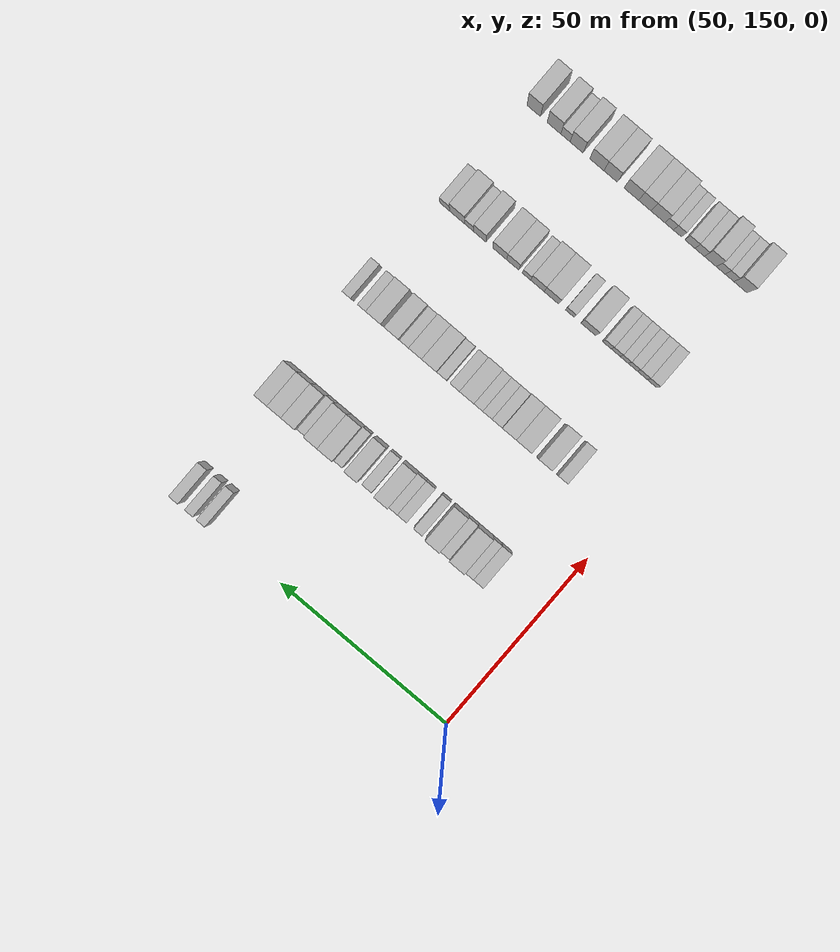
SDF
<sdf version="1.6">
 <world name="default">
  <model name="building_404">
   <static>1</static>
   <pose>55.0000 221.9756 0 0.000000 0.000000 0.000000</pose>
   <link name="link">
    <pose>0 0 3.00 0 0 0</pose>
    <collision name="collision"><geometry><box><size>10.0000 2.5108 6.0000</size></box></geometry></collision>
    <visual name="visual">
     <cast_shadows>0</cast_shadows>
     <geometry><box><size>10.0000 2.5108 6.0000</size></box></geometry>
     <material>
      <script>
       <uri>model://HANNAS_wall/materials/scripts</uri>
       <uri>model://HANNAS_wall/materials/textures</uri>
       <name>vrc/HANNAS_wall</name>
      </script>
     </material>
    </visual>
   </link>
  </model>
  <model name="building_405">
   <static>1</static>
   <pose>55.0000 225.4416 0 0.000000 0.000000 0.000000</pose>
   <link name="link">
    <pose>0 0 3.00 0 0 0</pose>
    <collision name="collision"><geometry><box><size>10.0000 2.4212 6.0000</size></box></geometry></collision>
    <visual name="visual">
     <cast_shadows>0</cast_shadows>
     <geometry><box><size>10.0000 2.4212 6.0000</size></box></geometry>
     <material>
      <script>
       <uri>model://HANNAS_wall/materials/scripts</uri>
       <uri>model://HANNAS_wall/materials/textures</uri>
       <name>vrc/HANNAS_wall</name>
      </script>
     </material>
    </visual>
   </link>
  </model>
  <model name="building_406">
   <static>1</static>
   <pose>55.0000 229.9931 0 0.000000 0.000000 0.000000</pose>
   <link name="link">
    <pose>0 0 3.00 0 0 0</pose>
    <collision name="collision"><geometry><box><size>10.0000 2.6818 6.0000</size></box></geometry></collision>
    <visual name="visual">
     <cast_shadows>0</cast_shadows>
     <geometry><box><size>10.0000 2.6818 6.0000</size></box></geometry>
     <material>
      <script>
       <uri>model://HANNAS_wall/materials/scripts</uri>
       <uri>model://HANNAS_wall/materials/textures</uri>
       <name>vrc/HANNAS_wall</name>
      </script>
     </material>
    </visual>
   </link>
  </model>
  <model name="building_603">
   <static>1</static>
   <pose>85.0000 165.8715 0 0.000000 0.000000 0.000000</pose>
   <link name="link">
    <pose>0 0 3.00 0 0 0</pose>
    <collision name="collision"><geometry><box><size>10.0000 2.9483 6.0000</size></box></geometry></collision>
    <visual name="visual">
     <cast_shadows>0</cast_shadows>
     <geometry><box><size>10.0000 2.9483 6.0000</size></box></geometry>
     <material>
      <script>
       <uri>model://HANNAS_wall/materials/scripts</uri>
       <uri>model://HANNAS_wall/materials/textures</uri>
       <name>vrc/HANNAS_wall</name>
      </script>
     </material>
    </visual>
   </link>
  </model>
  <model name="building_604">
   <static>1</static>
   <pose>85.0000 168.6481 0 0.000000 0.000000 0.000000</pose>
   <link name="link">
    <pose>0 0 3.00 0 0 0</pose>
    <collision name="collision"><geometry><box><size>10.0000 2.6049 6.0000</size></box></geometry></collision>
    <visual name="visual">
     <cast_shadows>0</cast_shadows>
     <geometry><box><size>10.0000 2.6049 6.0000</size></box></geometry>
     <material>
      <script>
       <uri>model://HANNAS_wall/materials/scripts</uri>
       <uri>model://HANNAS_wall/materials/textures</uri>
       <name>vrc/HANNAS_wall</name>
      </script>
     </material>
    </visual>
   </link>
  </model>
  <model name="building_605">
   <static>1</static>
   <pose>85.0000 172.1500 0 0.000000 0.000000 0.000000</pose>
   <link name="link">
    <pose>0 0 4.50 0 0 0</pose>
    <collision name="collision"><geometry><box><size>10.0000 4.3989 9.0000</size></box></geometry></collision>
    <visual name="visual">
     <cast_shadows>0</cast_shadows>
     <geometry><box><size>10.0000 4.3989 9.0000</size></box></geometry>
     <material>
      <script>
       <uri>model://HANNAS_wall/materials/scripts</uri>
       <uri>model://HANNAS_wall/materials/textures</uri>
       <name>vrc/HANNAS_wall</name>
      </script>
     </material>
    </visual>
   </link>
  </model>
  <model name="building_606">
   <static>1</static>
   <pose>85.0000 175.7868 0 0.000000 0.000000 0.000000</pose>
   <link name="link">
    <pose>0 0 3.00 0 0 0</pose>
    <collision name="collision"><geometry><box><size>10.0000 2.8748 6.0000</size></box></geometry></collision>
    <visual name="visual">
     <cast_shadows>0</cast_shadows>
     <geometry><box><size>10.0000 2.8748 6.0000</size></box></geometry>
     <material>
      <script>
       <uri>model://HANNAS_wall/materials/scripts</uri>
       <uri>model://HANNAS_wall/materials/textures</uri>
       <name>vrc/HANNAS_wall</name>
      </script>
     </material>
    </visual>
   </link>
  </model>
  <model name="building_607">
   <static>1</static>
   <pose>85.0000 179.3170 0 0.000000 0.000000 0.000000</pose>
   <link name="link">
    <pose>0 0 4.50 0 0 0</pose>
    <collision name="collision"><geometry><box><size>10.0000 4.1857 9.0000</size></box></geometry></collision>
    <visual name="visual">
     <cast_shadows>0</cast_shadows>
     <geometry><box><size>10.0000 4.1857 9.0000</size></box></geometry>
     <material>
      <script>
       <uri>model://HANNAS_wall/materials/scripts</uri>
       <uri>model://HANNAS_wall/materials/textures</uri>
       <name>vrc/HANNAS_wall</name>
      </script>
     </material>
    </visual>
   </link>
  </model>
  <model name="building_608">
   <static>1</static>
   <pose>85.0000 183.6979 0 0.000000 0.000000 0.000000</pose>
   <link name="link">
    <pose>0 0 3.00 0 0 0</pose>
    <collision name="collision"><geometry><box><size>10.0000 2.5763 6.0000</size></box></geometry></collision>
    <visual name="visual">
     <cast_shadows>0</cast_shadows>
     <geometry><box><size>10.0000 2.5763 6.0000</size></box></geometry>
     <material>
      <script>
       <uri>model://HANNAS_wall/materials/scripts</uri>
       <uri>model://HANNAS_wall/materials/textures</uri>
       <name>vrc/HANNAS_wall</name>
      </script>
     </material>
    </visual>
   </link>
  </model>
  <model name="building_609">
   <static>1</static>
   <pose>85.0000 188.3518 0 0.000000 0.000000 0.000000</pose>
   <link name="link">
    <pose>0 0 3.00 0 0 0</pose>
    <collision name="collision"><geometry><box><size>10.0000 2.7315 6.0000</size></box></geometry></collision>
    <visual name="visual">
     <cast_shadows>0</cast_shadows>
     <geometry><box><size>10.0000 2.7315 6.0000</size></box></geometry>
     <material>
      <script>
       <uri>model://HANNAS_wall/materials/scripts</uri>
       <uri>model://HANNAS_wall/materials/textures</uri>
       <name>vrc/HANNAS_wall</name>
      </script>
     </material>
    </visual>
   </link>
  </model>
  <model name="building_610">
   <static>1</static>
   <pose>85.0000 190.9875 0 0.000000 0.000000 0.000000</pose>
   <link name="link">
    <pose>0 0 3.00 0 0 0</pose>
    <collision name="collision"><geometry><box><size>10.0000 2.5399 6.0000</size></box></geometry></collision>
    <visual name="visual">
     <cast_shadows>0</cast_shadows>
     <geometry><box><size>10.0000 2.5399 6.0000</size></box></geometry>
     <material>
      <script>
       <uri>model://HANNAS_wall/materials/scripts</uri>
       <uri>model://HANNAS_wall/materials/textures</uri>
       <name>vrc/HANNAS_wall</name>
      </script>
     </material>
    </visual>
   </link>
  </model>
  <model name="building_611">
   <static>1</static>
   <pose>85.0000 194.2859 0 0.000000 0.000000 0.000000</pose>
   <link name="link">
    <pose>0 0 4.50 0 0 0</pose>
    <collision name="collision"><geometry><box><size>10.0000 4.0568 9.0000</size></box></geometry></collision>
    <visual name="visual">
     <cast_shadows>0</cast_shadows>
     <geometry><box><size>10.0000 4.0568 9.0000</size></box></geometry>
     <material>
      <script>
       <uri>model://HANNAS_wall/materials/scripts</uri>
       <uri>model://HANNAS_wall/materials/textures</uri>
       <name>vrc/HANNAS_wall</name>
      </script>
     </material>
    </visual>
   </link>
  </model>
  <model name="building_612">
   <static>1</static>
   <pose>85.0000 198.7643 0 0.000000 0.000000 0.000000</pose>
   <link name="link">
    <pose>0 0 3.00 0 0 0</pose>
    <collision name="collision"><geometry><box><size>10.0000 2.8999 6.0000</size></box></geometry></collision>
    <visual name="visual">
     <cast_shadows>0</cast_shadows>
     <geometry><box><size>10.0000 2.8999 6.0000</size></box></geometry>
     <material>
      <script>
       <uri>model://HANNAS_wall/materials/scripts</uri>
       <uri>model://HANNAS_wall/materials/textures</uri>
       <name>vrc/HANNAS_wall</name>
      </script>
     </material>
    </visual>
   </link>
  </model>
  <model name="building_613">
   <static>1</static>
   <pose>85.0000 203.0879 0 0.000000 0.000000 0.000000</pose>
   <link name="link">
    <pose>0 0 4.50 0 0 0</pose>
    <collision name="collision"><geometry><box><size>10.0000 3.7473 9.0000</size></box></geometry></collision>
    <visual name="visual">
     <cast_shadows>0</cast_shadows>
     <geometry><box><size>10.0000 3.7473 9.0000</size></box></geometry>
     <material>
      <script>
       <uri>model://HANNAS_wall/materials/scripts</uri>
       <uri>model://HANNAS_wall/materials/textures</uri>
       <name>vrc/HANNAS_wall</name>
      </script>
     </material>
    </visual>
   </link>
  </model>
  <model name="building_614">
   <static>1</static>
   <pose>85.0000 207.1631 0 0.000000 0.000000 0.000000</pose>
   <link name="link">
    <pose>0 0 3.00 0 0 0</pose>
    <collision name="collision"><geometry><box><size>10.0000 2.4032 6.0000</size></box></geometry></collision>
    <visual name="visual">
     <cast_shadows>0</cast_shadows>
     <geometry><box><size>10.0000 2.4032 6.0000</size></box></geometry>
     <material>
      <script>
       <uri>model://HANNAS_wall/materials/scripts</uri>
       <uri>model://HANNAS_wall/materials/textures</uri>
       <name>vrc/HANNAS_wall</name>
      </script>
     </material>
    </visual>
   </link>
  </model>
  <model name="building_615">
   <static>1</static>
   <pose>85.0000 210.5468 0 0.000000 0.000000 0.000000</pose>
   <link name="link">
    <pose>0 0 4.50 0 0 0</pose>
    <collision name="collision"><geometry><box><size>10.0000 4.3643 9.0000</size></box></geometry></collision>
    <visual name="visual">
     <cast_shadows>0</cast_shadows>
     <geometry><box><size>10.0000 4.3643 9.0000</size></box></geometry>
     <material>
      <script>
       <uri>model://HANNAS_wall/materials/scripts</uri>
       <uri>model://HANNAS_wall/materials/textures</uri>
       <name>vrc/HANNAS_wall</name>
      </script>
     </material>
    </visual>
   </link>
  </model>
  <model name="building_616">
   <static>1</static>
   <pose>85.0000 214.7239 0 0.000000 0.000000 0.000000</pose>
   <link name="link">
    <pose>0 0 4.50 0 0 0</pose>
    <collision name="collision"><geometry><box><size>10.0000 3.9899 9.0000</size></box></geometry></collision>
    <visual name="visual">
     <cast_shadows>0</cast_shadows>
     <geometry><box><size>10.0000 3.9899 9.0000</size></box></geometry>
     <material>
      <script>
       <uri>model://HANNAS_wall/materials/scripts</uri>
       <uri>model://HANNAS_wall/materials/textures</uri>
       <name>vrc/HANNAS_wall</name>
      </script>
     </material>
    </visual>
   </link>
  </model>
  <model name="building_617">
   <static>1</static>
   <pose>85.0000 217.9796 0 0.000000 0.000000 0.000000</pose>
   <link name="link">
    <pose>0 0 3.00 0 0 0</pose>
    <collision name="collision"><geometry><box><size>10.0000 2.5215 6.0000</size></box></geometry></collision>
    <visual name="visual">
     <cast_shadows>0</cast_shadows>
     <geometry><box><size>10.0000 2.5215 6.0000</size></box></geometry>
     <material>
      <script>
       <uri>model://HANNAS_wall/materials/scripts</uri>
       <uri>model://HANNAS_wall/materials/textures</uri>
       <name>vrc/HANNAS_wall</name>
      </script>
     </material>
    </visual>
   </link>
  </model>
  <model name="building_618">
   <static>1</static>
   <pose>85.0000 221.2233 0 0.000000 0.000000 0.000000</pose>
   <link name="link">
    <pose>0 0 4.50 0 0 0</pose>
    <collision name="collision"><geometry><box><size>10.0000 3.9660 9.0000</size></box></geometry></collision>
    <visual name="visual">
     <cast_shadows>0</cast_shadows>
     <geometry><box><size>10.0000 3.9660 9.0000</size></box></geometry>
     <material>
      <script>
       <uri>model://HANNAS_wall/materials/scripts</uri>
       <uri>model://HANNAS_wall/materials/textures</uri>
       <name>vrc/HANNAS_wall</name>
      </script>
     </material>
    </visual>
   </link>
  </model>
  <model name="building_619">
   <static>1</static>
   <pose>85.0000 225.2272 0 0.000000 0.000000 0.000000</pose>
   <link name="link">
    <pose>0 0 4.50 0 0 0</pose>
    <collision name="collision"><geometry><box><size>10.0000 4.0416 9.0000</size></box></geometry></collision>
    <visual name="visual">
     <cast_shadows>0</cast_shadows>
     <geometry><box><size>10.0000 4.0416 9.0000</size></box></geometry>
     <material>
      <script>
       <uri>model://HANNAS_wall/materials/scripts</uri>
       <uri>model://HANNAS_wall/materials/textures</uri>
       <name>vrc/HANNAS_wall</name>
      </script>
     </material>
    </visual>
   </link>
  </model>
  <model name="building_620">
   <static>1</static>
   <pose>85.0000 229.1442 0 0.000000 0.000000 0.000000</pose>
   <link name="link">
    <pose>0 0 4.50 0 0 0</pose>
    <collision name="collision"><geometry><box><size>10.0000 3.7926 9.0000</size></box></geometry></collision>
    <visual name="visual">
     <cast_shadows>0</cast_shadows>
     <geometry><box><size>10.0000 3.7926 9.0000</size></box></geometry>
     <material>
      <script>
       <uri>model://HANNAS_wall/materials/scripts</uri>
       <uri>model://HANNAS_wall/materials/textures</uri>
       <name>vrc/HANNAS_wall</name>
      </script>
     </material>
    </visual>
   </link>
  </model>
  <model name="building_832">
   <static>1</static>
   <pose>115.0000 166.5516 0 0.000000 0.000000 0.000000</pose>
   <link name="link">
    <pose>0 0 3.00 0 0 0</pose>
    <collision name="collision"><geometry><box><size>10.0000 2.8559 6.0000</size></box></geometry></collision>
    <visual name="visual">
     <cast_shadows>0</cast_shadows>
     <geometry><box><size>10.0000 2.8559 6.0000</size></box></geometry>
     <material>
      <script>
       <uri>model://HANNAS_wall/materials/scripts</uri>
       <uri>model://HANNAS_wall/materials/textures</uri>
       <name>vrc/HANNAS_wall</name>
      </script>
     </material>
    </visual>
   </link>
  </model>
  <model name="building_833">
   <static>1</static>
   <pose>115.0000 171.9787 0 0.000000 0.000000 0.000000</pose>
   <link name="link">
    <pose>0 0 4.50 0 0 0</pose>
    <collision name="collision"><geometry><box><size>10.0000 3.9983 9.0000</size></box></geometry></collision>
    <visual name="visual">
     <cast_shadows>0</cast_shadows>
     <geometry><box><size>10.0000 3.9983 9.0000</size></box></geometry>
     <material>
      <script>
       <uri>model://HANNAS_wall/materials/scripts</uri>
       <uri>model://HANNAS_wall/materials/textures</uri>
       <name>vrc/HANNAS_wall</name>
      </script>
     </material>
    </visual>
   </link>
  </model>
  <model name="building_834">
   <static>1</static>
   <pose>115.0000 178.2258 0 0.000000 0.000000 0.000000</pose>
   <link name="link">
    <pose>0 0 4.50 0 0 0</pose>
    <collision name="collision"><geometry><box><size>10.0000 4.4958 9.0000</size></box></geometry></collision>
    <visual name="visual">
     <cast_shadows>0</cast_shadows>
     <geometry><box><size>10.0000 4.4958 9.0000</size></box></geometry>
     <material>
      <script>
       <uri>model://HANNAS_wall/materials/scripts</uri>
       <uri>model://HANNAS_wall/materials/textures</uri>
       <name>vrc/HANNAS_wall</name>
      </script>
     </material>
    </visual>
   </link>
  </model>
  <model name="building_835">
   <static>1</static>
   <pose>115.0000 182.4949 0 0.000000 0.000000 0.000000</pose>
   <link name="link">
    <pose>0 0 4.50 0 0 0</pose>
    <collision name="collision"><geometry><box><size>10.0000 4.0424 9.0000</size></box></geometry></collision>
    <visual name="visual">
     <cast_shadows>0</cast_shadows>
     <geometry><box><size>10.0000 4.0424 9.0000</size></box></geometry>
     <material>
      <script>
       <uri>model://HANNAS_wall/materials/scripts</uri>
       <uri>model://HANNAS_wall/materials/textures</uri>
       <name>vrc/HANNAS_wall</name>
      </script>
     </material>
    </visual>
   </link>
  </model>
  <model name="building_836">
   <static>1</static>
   <pose>115.0000 185.9971 0 0.000000 0.000000 0.000000</pose>
   <link name="link">
    <pose>0 0 3.00 0 0 0</pose>
    <collision name="collision"><geometry><box><size>10.0000 2.9619 6.0000</size></box></geometry></collision>
    <visual name="visual">
     <cast_shadows>0</cast_shadows>
     <geometry><box><size>10.0000 2.9619 6.0000</size></box></geometry>
     <material>
      <script>
       <uri>model://HANNAS_wall/materials/scripts</uri>
       <uri>model://HANNAS_wall/materials/textures</uri>
       <name>vrc/HANNAS_wall</name>
      </script>
     </material>
    </visual>
   </link>
  </model>
  <model name="building_837">
   <static>1</static>
   <pose>115.0000 188.8483 0 0.000000 0.000000 0.000000</pose>
   <link name="link">
    <pose>0 0 3.00 0 0 0</pose>
    <collision name="collision"><geometry><box><size>10.0000 2.7406 6.0000</size></box></geometry></collision>
    <visual name="visual">
     <cast_shadows>0</cast_shadows>
     <geometry><box><size>10.0000 2.7406 6.0000</size></box></geometry>
     <material>
      <script>
       <uri>model://HANNAS_wall/materials/scripts</uri>
       <uri>model://HANNAS_wall/materials/textures</uri>
       <name>vrc/HANNAS_wall</name>
      </script>
     </material>
    </visual>
   </link>
  </model>
  <model name="building_838">
   <static>1</static>
   <pose>115.0000 191.5086 0 0.000000 0.000000 0.000000</pose>
   <link name="link">
    <pose>0 0 3.00 0 0 0</pose>
    <collision name="collision"><geometry><box><size>10.0000 2.5801 6.0000</size></box></geometry></collision>
    <visual name="visual">
     <cast_shadows>0</cast_shadows>
     <geometry><box><size>10.0000 2.5801 6.0000</size></box></geometry>
     <material>
      <script>
       <uri>model://HANNAS_wall/materials/scripts</uri>
       <uri>model://HANNAS_wall/materials/textures</uri>
       <name>vrc/HANNAS_wall</name>
      </script>
     </material>
    </visual>
   </link>
  </model>
  <model name="building_839">
   <static>1</static>
   <pose>115.0000 194.9049 0 0.000000 0.000000 0.000000</pose>
   <link name="link">
    <pose>0 0 4.50 0 0 0</pose>
    <collision name="collision"><geometry><box><size>10.0000 4.2125 9.0000</size></box></geometry></collision>
    <visual name="visual">
     <cast_shadows>0</cast_shadows>
     <geometry><box><size>10.0000 4.2125 9.0000</size></box></geometry>
     <material>
      <script>
       <uri>model://HANNAS_wall/materials/scripts</uri>
       <uri>model://HANNAS_wall/materials/textures</uri>
       <name>vrc/HANNAS_wall</name>
      </script>
     </material>
    </visual>
   </link>
  </model>
  <model name="building_840">
   <static>1</static>
   <pose>115.0000 198.4409 0 0.000000 0.000000 0.000000</pose>
   <link name="link">
    <pose>0 0 3.00 0 0 0</pose>
    <collision name="collision"><geometry><box><size>10.0000 2.8595 6.0000</size></box></geometry></collision>
    <visual name="visual">
     <cast_shadows>0</cast_shadows>
     <geometry><box><size>10.0000 2.8595 6.0000</size></box></geometry>
     <material>
      <script>
       <uri>model://HANNAS_wall/materials/scripts</uri>
       <uri>model://HANNAS_wall/materials/textures</uri>
       <name>vrc/HANNAS_wall</name>
      </script>
     </material>
    </visual>
   </link>
  </model>
  <model name="building_841">
   <static>1</static>
   <pose>115.0000 202.2763 0 0.000000 0.000000 0.000000</pose>
   <link name="link">
    <pose>0 0 3.00 0 0 0</pose>
    <collision name="collision"><geometry><box><size>10.0000 2.8113 6.0000</size></box></geometry></collision>
    <visual name="visual">
     <cast_shadows>0</cast_shadows>
     <geometry><box><size>10.0000 2.8113 6.0000</size></box></geometry>
     <material>
      <script>
       <uri>model://HANNAS_wall/materials/scripts</uri>
       <uri>model://HANNAS_wall/materials/textures</uri>
       <name>vrc/HANNAS_wall</name>
      </script>
     </material>
    </visual>
   </link>
  </model>
  <model name="building_842">
   <static>1</static>
   <pose>115.0000 205.8356 0 0.000000 0.000000 0.000000</pose>
   <link name="link">
    <pose>0 0 4.50 0 0 0</pose>
    <collision name="collision"><geometry><box><size>10.0000 4.3072 9.0000</size></box></geometry></collision>
    <visual name="visual">
     <cast_shadows>0</cast_shadows>
     <geometry><box><size>10.0000 4.3072 9.0000</size></box></geometry>
     <material>
      <script>
       <uri>model://HANNAS_wall/materials/scripts</uri>
       <uri>model://HANNAS_wall/materials/textures</uri>
       <name>vrc/HANNAS_wall</name>
      </script>
     </material>
    </visual>
   </link>
  </model>
  <model name="building_843">
   <static>1</static>
   <pose>115.0000 209.8811 0 0.000000 0.000000 0.000000</pose>
   <link name="link">
    <pose>0 0 4.50 0 0 0</pose>
    <collision name="collision"><geometry><box><size>10.0000 3.7839 9.0000</size></box></geometry></collision>
    <visual name="visual">
     <cast_shadows>0</cast_shadows>
     <geometry><box><size>10.0000 3.7839 9.0000</size></box></geometry>
     <material>
      <script>
       <uri>model://HANNAS_wall/materials/scripts</uri>
       <uri>model://HANNAS_wall/materials/textures</uri>
       <name>vrc/HANNAS_wall</name>
      </script>
     </material>
    </visual>
   </link>
  </model>
  <model name="building_844">
   <static>1</static>
   <pose>115.0000 213.2576 0 0.000000 0.000000 0.000000</pose>
   <link name="link">
    <pose>0 0 3.00 0 0 0</pose>
    <collision name="collision"><geometry><box><size>10.0000 2.9689 6.0000</size></box></geometry></collision>
    <visual name="visual">
     <cast_shadows>0</cast_shadows>
     <geometry><box><size>10.0000 2.9689 6.0000</size></box></geometry>
     <material>
      <script>
       <uri>model://HANNAS_wall/materials/scripts</uri>
       <uri>model://HANNAS_wall/materials/textures</uri>
       <name>vrc/HANNAS_wall</name>
      </script>
     </material>
    </visual>
   </link>
  </model>
  <model name="building_845">
   <static>1</static>
   <pose>115.0000 216.8142 0 0.000000 0.000000 0.000000</pose>
   <link name="link">
    <pose>0 0 4.50 0 0 0</pose>
    <collision name="collision"><geometry><box><size>10.0000 4.1443 9.0000</size></box></geometry></collision>
    <visual name="visual">
     <cast_shadows>0</cast_shadows>
     <geometry><box><size>10.0000 4.1443 9.0000</size></box></geometry>
     <material>
      <script>
       <uri>model://HANNAS_wall/materials/scripts</uri>
       <uri>model://HANNAS_wall/materials/textures</uri>
       <name>vrc/HANNAS_wall</name>
      </script>
     </material>
    </visual>
   </link>
  </model>
  <model name="building_846">
   <static>1</static>
   <pose>115.0000 222.0591 0 0.000000 0.000000 0.000000</pose>
   <link name="link">
    <pose>0 0 4.50 0 0 0</pose>
    <collision name="collision"><geometry><box><size>10.0000 4.3455 9.0000</size></box></geometry></collision>
    <visual name="visual">
     <cast_shadows>0</cast_shadows>
     <geometry><box><size>10.0000 4.3455 9.0000</size></box></geometry>
     <material>
      <script>
       <uri>model://HANNAS_wall/materials/scripts</uri>
       <uri>model://HANNAS_wall/materials/textures</uri>
       <name>vrc/HANNAS_wall</name>
      </script>
     </material>
    </visual>
   </link>
  </model>
  <model name="building_847">
   <static>1</static>
   <pose>115.0000 225.6306 0 0.000000 0.000000 0.000000</pose>
   <link name="link">
    <pose>0 0 3.00 0 0 0</pose>
    <collision name="collision"><geometry><box><size>10.0000 2.7975 6.0000</size></box></geometry></collision>
    <visual name="visual">
     <cast_shadows>0</cast_shadows>
     <geometry><box><size>10.0000 2.7975 6.0000</size></box></geometry>
     <material>
      <script>
       <uri>model://HANNAS_wall/materials/scripts</uri>
       <uri>model://HANNAS_wall/materials/textures</uri>
       <name>vrc/HANNAS_wall</name>
      </script>
     </material>
    </visual>
   </link>
  </model>
  <model name="building_848">
   <static>1</static>
   <pose>115.0000 230.2933 0 0.000000 0.000000 0.000000</pose>
   <link name="link">
    <pose>0 0 3.00 0 0 0</pose>
    <collision name="collision"><geometry><box><size>10.0000 2.5279 6.0000</size></box></geometry></collision>
    <visual name="visual">
     <cast_shadows>0</cast_shadows>
     <geometry><box><size>10.0000 2.5279 6.0000</size></box></geometry>
     <material>
      <script>
       <uri>model://HANNAS_wall/materials/scripts</uri>
       <uri>model://HANNAS_wall/materials/textures</uri>
       <name>vrc/HANNAS_wall</name>
      </script>
     </material>
    </visual>
   </link>
  </model>
  <model name="building_1057">
   <static>1</static>
   <pose>145.0000 164.9407 0 0.000000 0.000000 0.000000</pose>
   <link name="link">
    <pose>0 0 3.00 0 0 0</pose>
    <collision name="collision"><geometry><box><size>10.0000 2.8651 6.0000</size></box></geometry></collision>
    <visual name="visual">
     <cast_shadows>0</cast_shadows>
     <geometry><box><size>10.0000 2.8651 6.0000</size></box></geometry>
     <material>
      <script>
       <uri>model://HANNAS_wall/materials/scripts</uri>
       <uri>model://HANNAS_wall/materials/textures</uri>
       <name>vrc/HANNAS_wall</name>
      </script>
     </material>
    </visual>
   </link>
  </model>
  <model name="building_1058">
   <static>1</static>
   <pose>145.0000 167.8382 0 0.000000 0.000000 0.000000</pose>
   <link name="link">
    <pose>0 0 3.00 0 0 0</pose>
    <collision name="collision"><geometry><box><size>10.0000 2.9301 6.0000</size></box></geometry></collision>
    <visual name="visual">
     <cast_shadows>0</cast_shadows>
     <geometry><box><size>10.0000 2.9301 6.0000</size></box></geometry>
     <material>
      <script>
       <uri>model://HANNAS_wall/materials/scripts</uri>
       <uri>model://HANNAS_wall/materials/textures</uri>
       <name>vrc/HANNAS_wall</name>
      </script>
     </material>
    </visual>
   </link>
  </model>
  <model name="building_1059">
   <static>1</static>
   <pose>145.0000 170.6256 0 0.000000 0.000000 0.000000</pose>
   <link name="link">
    <pose>0 0 3.00 0 0 0</pose>
    <collision name="collision"><geometry><box><size>10.0000 2.6447 6.0000</size></box></geometry></collision>
    <visual name="visual">
     <cast_shadows>0</cast_shadows>
     <geometry><box><size>10.0000 2.6447 6.0000</size></box></geometry>
     <material>
      <script>
       <uri>model://HANNAS_wall/materials/scripts</uri>
       <uri>model://HANNAS_wall/materials/textures</uri>
       <name>vrc/HANNAS_wall</name>
      </script>
     </material>
    </visual>
   </link>
  </model>
  <model name="building_1060">
   <static>1</static>
   <pose>145.0000 173.1772 0 0.000000 0.000000 0.000000</pose>
   <link name="link">
    <pose>0 0 3.00 0 0 0</pose>
    <collision name="collision"><geometry><box><size>10.0000 2.4585 6.0000</size></box></geometry></collision>
    <visual name="visual">
     <cast_shadows>0</cast_shadows>
     <geometry><box><size>10.0000 2.4585 6.0000</size></box></geometry>
     <material>
      <script>
       <uri>model://HANNAS_wall/materials/scripts</uri>
       <uri>model://HANNAS_wall/materials/textures</uri>
       <name>vrc/HANNAS_wall</name>
      </script>
     </material>
    </visual>
   </link>
  </model>
  <model name="building_1061">
   <static>1</static>
   <pose>145.0000 175.7353 0 0.000000 0.000000 0.000000</pose>
   <link name="link">
    <pose>0 0 3.00 0 0 0</pose>
    <collision name="collision"><geometry><box><size>10.0000 2.6577 6.0000</size></box></geometry></collision>
    <visual name="visual">
     <cast_shadows>0</cast_shadows>
     <geometry><box><size>10.0000 2.6577 6.0000</size></box></geometry>
     <material>
      <script>
       <uri>model://HANNAS_wall/materials/scripts</uri>
       <uri>model://HANNAS_wall/materials/textures</uri>
       <name>vrc/HANNAS_wall</name>
      </script>
     </material>
    </visual>
   </link>
  </model>
  <model name="building_1062">
   <static>1</static>
   <pose>145.0000 178.4023 0 0.000000 0.000000 0.000000</pose>
   <link name="link">
    <pose>0 0 3.00 0 0 0</pose>
    <collision name="collision"><geometry><box><size>10.0000 2.6764 6.0000</size></box></geometry></collision>
    <visual name="visual">
     <cast_shadows>0</cast_shadows>
     <geometry><box><size>10.0000 2.6764 6.0000</size></box></geometry>
     <material>
      <script>
       <uri>model://HANNAS_wall/materials/scripts</uri>
       <uri>model://HANNAS_wall/materials/textures</uri>
       <name>vrc/HANNAS_wall</name>
      </script>
     </material>
    </visual>
   </link>
  </model>
  <model name="building_1063">
   <static>1</static>
   <pose>145.0000 183.9748 0 0.000000 0.000000 0.000000</pose>
   <link name="link">
    <pose>0 0 4.50 0 0 0</pose>
    <collision name="collision"><geometry><box><size>10.0000 4.4685 9.0000</size></box></geometry></collision>
    <visual name="visual">
     <cast_shadows>0</cast_shadows>
     <geometry><box><size>10.0000 4.4685 9.0000</size></box></geometry>
     <material>
      <script>
       <uri>model://HANNAS_wall/materials/scripts</uri>
       <uri>model://HANNAS_wall/materials/textures</uri>
       <name>vrc/HANNAS_wall</name>
      </script>
     </material>
    </visual>
   </link>
  </model>
  <model name="building_1064">
   <static>1</static>
   <pose>145.0000 189.5321 0 0.000000 0.000000 0.000000</pose>
   <link name="link">
    <pose>0 0 3.00 0 0 0</pose>
    <collision name="collision"><geometry><box><size>10.0000 2.6460 6.0000</size></box></geometry></collision>
    <visual name="visual">
     <cast_shadows>0</cast_shadows>
     <geometry><box><size>10.0000 2.6460 6.0000</size></box></geometry>
     <material>
      <script>
       <uri>model://HANNAS_wall/materials/scripts</uri>
       <uri>model://HANNAS_wall/materials/textures</uri>
       <name>vrc/HANNAS_wall</name>
      </script>
     </material>
    </visual>
   </link>
  </model>
  <model name="building_1065">
   <static>1</static>
   <pose>145.0000 195.0495 0 0.000000 0.000000 0.000000</pose>
   <link name="link">
    <pose>0 0 4.50 0 0 0</pose>
    <collision name="collision"><geometry><box><size>10.0000 4.3887 9.0000</size></box></geometry></collision>
    <visual name="visual">
     <cast_shadows>0</cast_shadows>
     <geometry><box><size>10.0000 4.3887 9.0000</size></box></geometry>
     <material>
      <script>
       <uri>model://HANNAS_wall/materials/scripts</uri>
       <uri>model://HANNAS_wall/materials/textures</uri>
       <name>vrc/HANNAS_wall</name>
      </script>
     </material>
    </visual>
   </link>
  </model>
  <model name="building_1066">
   <static>1</static>
   <pose>145.0000 199.2491 0 0.000000 0.000000 0.000000</pose>
   <link name="link">
    <pose>0 0 4.50 0 0 0</pose>
    <collision name="collision"><geometry><box><size>10.0000 4.0105 9.0000</size></box></geometry></collision>
    <visual name="visual">
     <cast_shadows>0</cast_shadows>
     <geometry><box><size>10.0000 4.0105 9.0000</size></box></geometry>
     <material>
      <script>
       <uri>model://HANNAS_wall/materials/scripts</uri>
       <uri>model://HANNAS_wall/materials/textures</uri>
       <name>vrc/HANNAS_wall</name>
      </script>
     </material>
    </visual>
   </link>
  </model>
  <model name="building_1067">
   <static>1</static>
   <pose>145.0000 202.5488 0 0.000000 0.000000 0.000000</pose>
   <link name="link">
    <pose>0 0 3.00 0 0 0</pose>
    <collision name="collision"><geometry><box><size>10.0000 2.5891 6.0000</size></box></geometry></collision>
    <visual name="visual">
     <cast_shadows>0</cast_shadows>
     <geometry><box><size>10.0000 2.5891 6.0000</size></box></geometry>
     <material>
      <script>
       <uri>model://HANNAS_wall/materials/scripts</uri>
       <uri>model://HANNAS_wall/materials/textures</uri>
       <name>vrc/HANNAS_wall</name>
      </script>
     </material>
    </visual>
   </link>
  </model>
  <model name="building_1068">
   <static>1</static>
   <pose>145.0000 206.7005 0 0.000000 0.000000 0.000000</pose>
   <link name="link">
    <pose>0 0 4.50 0 0 0</pose>
    <collision name="collision"><geometry><box><size>10.0000 3.7143 9.0000</size></box></geometry></collision>
    <visual name="visual">
     <cast_shadows>0</cast_shadows>
     <geometry><box><size>10.0000 3.7143 9.0000</size></box></geometry>
     <material>
      <script>
       <uri>model://HANNAS_wall/materials/scripts</uri>
       <uri>model://HANNAS_wall/materials/textures</uri>
       <name>vrc/HANNAS_wall</name>
      </script>
     </material>
    </visual>
   </link>
  </model>
  <model name="building_1069">
   <static>1</static>
   <pose>145.0000 210.6555 0 0.000000 0.000000 0.000000</pose>
   <link name="link">
    <pose>0 0 4.50 0 0 0</pose>
    <collision name="collision"><geometry><box><size>10.0000 4.1956 9.0000</size></box></geometry></collision>
    <visual name="visual">
     <cast_shadows>0</cast_shadows>
     <geometry><box><size>10.0000 4.1956 9.0000</size></box></geometry>
     <material>
      <script>
       <uri>model://HANNAS_wall/materials/scripts</uri>
       <uri>model://HANNAS_wall/materials/textures</uri>
       <name>vrc/HANNAS_wall</name>
      </script>
     </material>
    </visual>
   </link>
  </model>
  <model name="building_1070">
   <static>1</static>
   <pose>145.0000 216.6132 0 0.000000 0.000000 0.000000</pose>
   <link name="link">
    <pose>0 0 4.50 0 0 0</pose>
    <collision name="collision"><geometry><box><size>10.0000 3.7198 9.0000</size></box></geometry></collision>
    <visual name="visual">
     <cast_shadows>0</cast_shadows>
     <geometry><box><size>10.0000 3.7198 9.0000</size></box></geometry>
     <material>
      <script>
       <uri>model://HANNAS_wall/materials/scripts</uri>
       <uri>model://HANNAS_wall/materials/textures</uri>
       <name>vrc/HANNAS_wall</name>
      </script>
     </material>
    </visual>
   </link>
  </model>
  <model name="building_1071">
   <static>1</static>
   <pose>145.0000 219.8210 0 0.000000 0.000000 0.000000</pose>
   <link name="link">
    <pose>0 0 3.00 0 0 0</pose>
    <collision name="collision"><geometry><box><size>10.0000 2.6959 6.0000</size></box></geometry></collision>
    <visual name="visual">
     <cast_shadows>0</cast_shadows>
     <geometry><box><size>10.0000 2.6959 6.0000</size></box></geometry>
     <material>
      <script>
       <uri>model://HANNAS_wall/materials/scripts</uri>
       <uri>model://HANNAS_wall/materials/textures</uri>
       <name>vrc/HANNAS_wall</name>
      </script>
     </material>
    </visual>
   </link>
  </model>
  <model name="building_1072">
   <static>1</static>
   <pose>145.0000 223.4094 0 0.000000 0.000000 0.000000</pose>
   <link name="link">
    <pose>0 0 4.50 0 0 0</pose>
    <collision name="collision"><geometry><box><size>10.0000 4.4809 9.0000</size></box></geometry></collision>
    <visual name="visual">
     <cast_shadows>0</cast_shadows>
     <geometry><box><size>10.0000 4.4809 9.0000</size></box></geometry>
     <material>
      <script>
       <uri>model://HANNAS_wall/materials/scripts</uri>
       <uri>model://HANNAS_wall/materials/textures</uri>
       <name>vrc/HANNAS_wall</name>
      </script>
     </material>
    </visual>
   </link>
  </model>
  <model name="building_1073">
   <static>1</static>
   <pose>145.0000 227.1429 0 0.000000 0.000000 0.000000</pose>
   <link name="link">
    <pose>0 0 3.00 0 0 0</pose>
    <collision name="collision"><geometry><box><size>10.0000 2.9861 6.0000</size></box></geometry></collision>
    <visual name="visual">
     <cast_shadows>0</cast_shadows>
     <geometry><box><size>10.0000 2.9861 6.0000</size></box></geometry>
     <material>
      <script>
       <uri>model://HANNAS_wall/materials/scripts</uri>
       <uri>model://HANNAS_wall/materials/textures</uri>
       <name>vrc/HANNAS_wall</name>
      </script>
     </material>
    </visual>
   </link>
  </model>
  <model name="building_1287">
   <static>1</static>
   <pose>175.0000 163.6510 0 0.000000 0.000000 0.000000</pose>
   <link name="link">
    <pose>0 0 4.50 0 0 0</pose>
    <collision name="collision"><geometry><box><size>10.0000 3.9660 9.0000</size></box></geometry></collision>
    <visual name="visual">
     <cast_shadows>0</cast_shadows>
     <geometry><box><size>10.0000 3.9660 9.0000</size></box></geometry>
     <material>
      <script>
       <uri>model://HANNAS_wall/materials/scripts</uri>
       <uri>model://HANNAS_wall/materials/textures</uri>
       <name>vrc/HANNAS_wall</name>
      </script>
     </material>
    </visual>
   </link>
  </model>
  <model name="building_1288">
   <static>1</static>
   <pose>175.0000 166.9576 0 0.000000 0.000000 0.000000</pose>
   <link name="link">
    <pose>0 0 3.00 0 0 0</pose>
    <collision name="collision"><geometry><box><size>10.0000 2.6473 6.0000</size></box></geometry></collision>
    <visual name="visual">
     <cast_shadows>0</cast_shadows>
     <geometry><box><size>10.0000 2.6473 6.0000</size></box></geometry>
     <material>
      <script>
       <uri>model://HANNAS_wall/materials/scripts</uri>
       <uri>model://HANNAS_wall/materials/textures</uri>
       <name>vrc/HANNAS_wall</name>
      </script>
     </material>
    </visual>
   </link>
  </model>
  <model name="building_1289">
   <static>1</static>
   <pose>175.0000 169.5923 0 0.000000 0.000000 0.000000</pose>
   <link name="link">
    <pose>0 0 3.00 0 0 0</pose>
    <collision name="collision"><geometry><box><size>10.0000 2.6221 6.0000</size></box></geometry></collision>
    <visual name="visual">
     <cast_shadows>0</cast_shadows>
     <geometry><box><size>10.0000 2.6221 6.0000</size></box></geometry>
     <material>
      <script>
       <uri>model://HANNAS_wall/materials/scripts</uri>
       <uri>model://HANNAS_wall/materials/textures</uri>
       <name>vrc/HANNAS_wall</name>
      </script>
     </material>
    </visual>
   </link>
  </model>
  <model name="building_1290">
   <static>1</static>
   <pose>175.0000 172.7341 0 0.000000 0.000000 0.000000</pose>
   <link name="link">
    <pose>0 0 4.50 0 0 0</pose>
    <collision name="collision"><geometry><box><size>10.0000 3.6613 9.0000</size></box></geometry></collision>
    <visual name="visual">
     <cast_shadows>0</cast_shadows>
     <geometry><box><size>10.0000 3.6613 9.0000</size></box></geometry>
     <material>
      <script>
       <uri>model://HANNAS_wall/materials/scripts</uri>
       <uri>model://HANNAS_wall/materials/textures</uri>
       <name>vrc/HANNAS_wall</name>
      </script>
     </material>
    </visual>
   </link>
  </model>
  <model name="building_1291">
   <static>1</static>
   <pose>175.0000 175.9840 0 0.000000 0.000000 0.000000</pose>
   <link name="link">
    <pose>0 0 3.00 0 0 0</pose>
    <collision name="collision"><geometry><box><size>10.0000 2.8386 6.0000</size></box></geometry></collision>
    <visual name="visual">
     <cast_shadows>0</cast_shadows>
     <geometry><box><size>10.0000 2.8386 6.0000</size></box></geometry>
     <material>
      <script>
       <uri>model://HANNAS_wall/materials/scripts</uri>
       <uri>model://HANNAS_wall/materials/textures</uri>
       <name>vrc/HANNAS_wall</name>
      </script>
     </material>
    </visual>
   </link>
  </model>
  <model name="building_1292">
   <static>1</static>
   <pose>175.0000 178.8964 0 0.000000 0.000000 0.000000</pose>
   <link name="link">
    <pose>0 0 3.00 0 0 0</pose>
    <collision name="collision"><geometry><box><size>10.0000 2.9861 6.0000</size></box></geometry></collision>
    <visual name="visual">
     <cast_shadows>0</cast_shadows>
     <geometry><box><size>10.0000 2.9861 6.0000</size></box></geometry>
     <material>
      <script>
       <uri>model://HANNAS_wall/materials/scripts</uri>
       <uri>model://HANNAS_wall/materials/textures</uri>
       <name>vrc/HANNAS_wall</name>
      </script>
     </material>
    </visual>
   </link>
  </model>
  <model name="building_1293">
   <static>1</static>
   <pose>175.0000 182.6147 0 0.000000 0.000000 0.000000</pose>
   <link name="link">
    <pose>0 0 3.00 0 0 0</pose>
    <collision name="collision"><geometry><box><size>10.0000 2.4506 6.0000</size></box></geometry></collision>
    <visual name="visual">
     <cast_shadows>0</cast_shadows>
     <geometry><box><size>10.0000 2.4506 6.0000</size></box></geometry>
     <material>
      <script>
       <uri>model://HANNAS_wall/materials/scripts</uri>
       <uri>model://HANNAS_wall/materials/textures</uri>
       <name>vrc/HANNAS_wall</name>
      </script>
     </material>
    </visual>
   </link>
  </model>
  <model name="building_1294">
   <static>1</static>
   <pose>175.0000 185.1089 0 0.000000 0.000000 0.000000</pose>
   <link name="link">
    <pose>0 0 3.00 0 0 0</pose>
    <collision name="collision"><geometry><box><size>10.0000 2.5378 6.0000</size></box></geometry></collision>
    <visual name="visual">
     <cast_shadows>0</cast_shadows>
     <geometry><box><size>10.0000 2.5378 6.0000</size></box></geometry>
     <material>
      <script>
       <uri>model://HANNAS_wall/materials/scripts</uri>
       <uri>model://HANNAS_wall/materials/textures</uri>
       <name>vrc/HANNAS_wall</name>
      </script>
     </material>
    </visual>
   </link>
  </model>
  <model name="building_1295">
   <static>1</static>
   <pose>175.0000 188.4753 0 0.000000 0.000000 0.000000</pose>
   <link name="link">
    <pose>0 0 4.50 0 0 0</pose>
    <collision name="collision"><geometry><box><size>10.0000 4.1949 9.0000</size></box></geometry></collision>
    <visual name="visual">
     <cast_shadows>0</cast_shadows>
     <geometry><box><size>10.0000 4.1949 9.0000</size></box></geometry>
     <material>
      <script>
       <uri>model://HANNAS_wall/materials/scripts</uri>
       <uri>model://HANNAS_wall/materials/textures</uri>
       <name>vrc/HANNAS_wall</name>
      </script>
     </material>
    </visual>
   </link>
  </model>
  <model name="building_1296">
   <static>1</static>
   <pose>175.0000 192.4528 0 0.000000 0.000000 0.000000</pose>
   <link name="link">
    <pose>0 0 4.50 0 0 0</pose>
    <collision name="collision"><geometry><box><size>10.0000 3.7601 9.0000</size></box></geometry></collision>
    <visual name="visual">
     <cast_shadows>0</cast_shadows>
     <geometry><box><size>10.0000 3.7601 9.0000</size></box></geometry>
     <material>
      <script>
       <uri>model://HANNAS_wall/materials/scripts</uri>
       <uri>model://HANNAS_wall/materials/textures</uri>
       <name>vrc/HANNAS_wall</name>
      </script>
     </material>
    </visual>
   </link>
  </model>
  <model name="building_1297">
   <static>1</static>
   <pose>175.0000 196.5458 0 0.000000 0.000000 0.000000</pose>
   <link name="link">
    <pose>0 0 4.50 0 0 0</pose>
    <collision name="collision"><geometry><box><size>10.0000 4.4257 9.0000</size></box></geometry></collision>
    <visual name="visual">
     <cast_shadows>0</cast_shadows>
     <geometry><box><size>10.0000 4.4257 9.0000</size></box></geometry>
     <material>
      <script>
       <uri>model://HANNAS_wall/materials/scripts</uri>
       <uri>model://HANNAS_wall/materials/textures</uri>
       <name>vrc/HANNAS_wall</name>
      </script>
     </material>
    </visual>
   </link>
  </model>
  <model name="building_1298">
   <static>1</static>
   <pose>175.0000 202.7751 0 0.000000 0.000000 0.000000</pose>
   <link name="link">
    <pose>0 0 4.50 0 0 0</pose>
    <collision name="collision"><geometry><box><size>10.0000 4.0330 9.0000</size></box></geometry></collision>
    <visual name="visual">
     <cast_shadows>0</cast_shadows>
     <geometry><box><size>10.0000 4.0330 9.0000</size></box></geometry>
     <material>
      <script>
       <uri>model://HANNAS_wall/materials/scripts</uri>
       <uri>model://HANNAS_wall/materials/textures</uri>
       <name>vrc/HANNAS_wall</name>
      </script>
     </material>
    </visual>
   </link>
  </model>
  <model name="building_1299">
   <static>1</static>
   <pose>175.0000 206.9527 0 0.000000 0.000000 0.000000</pose>
   <link name="link">
    <pose>0 0 4.50 0 0 0</pose>
    <collision name="collision"><geometry><box><size>10.0000 4.3221 9.0000</size></box></geometry></collision>
    <visual name="visual">
     <cast_shadows>0</cast_shadows>
     <geometry><box><size>10.0000 4.3221 9.0000</size></box></geometry>
     <material>
      <script>
       <uri>model://HANNAS_wall/materials/scripts</uri>
       <uri>model://HANNAS_wall/materials/textures</uri>
       <name>vrc/HANNAS_wall</name>
      </script>
     </material>
    </visual>
   </link>
  </model>
  <model name="building_1300">
   <static>1</static>
   <pose>175.0000 213.0648 0 0.000000 0.000000 0.000000</pose>
   <link name="link">
    <pose>0 0 4.50 0 0 0</pose>
    <collision name="collision"><geometry><box><size>10.0000 3.9020 9.0000</size></box></geometry></collision>
    <visual name="visual">
     <cast_shadows>0</cast_shadows>
     <geometry><box><size>10.0000 3.9020 9.0000</size></box></geometry>
     <material>
      <script>
       <uri>model://HANNAS_wall/materials/scripts</uri>
       <uri>model://HANNAS_wall/materials/textures</uri>
       <name>vrc/HANNAS_wall</name>
      </script>
     </material>
    </visual>
   </link>
  </model>
  <model name="building_1301">
   <static>1</static>
   <pose>175.0000 216.4136 0 0.000000 0.000000 0.000000</pose>
   <link name="link">
    <pose>0 0 3.00 0 0 0</pose>
    <collision name="collision"><geometry><box><size>10.0000 2.7956 6.0000</size></box></geometry></collision>
    <visual name="visual">
     <cast_shadows>0</cast_shadows>
     <geometry><box><size>10.0000 2.7956 6.0000</size></box></geometry>
     <material>
      <script>
       <uri>model://HANNAS_wall/materials/scripts</uri>
       <uri>model://HANNAS_wall/materials/textures</uri>
       <name>vrc/HANNAS_wall</name>
      </script>
     </material>
    </visual>
   </link>
  </model>
  <model name="building_1302">
   <static>1</static>
   <pose>175.0000 219.8700 0 0.000000 0.000000 0.000000</pose>
   <link name="link">
    <pose>0 0 4.50 0 0 0</pose>
    <collision name="collision"><geometry><box><size>10.0000 4.1171 9.0000</size></box></geometry></collision>
    <visual name="visual">
     <cast_shadows>0</cast_shadows>
     <geometry><box><size>10.0000 4.1171 9.0000</size></box></geometry>
     <material>
      <script>
       <uri>model://HANNAS_wall/materials/scripts</uri>
       <uri>model://HANNAS_wall/materials/textures</uri>
       <name>vrc/HANNAS_wall</name>
      </script>
     </material>
    </visual>
   </link>
  </model>
  <model name="building_1303">
   <static>1</static>
   <pose>175.0000 225.9633 0 0.000000 0.000000 0.000000</pose>
   <link name="link">
    <pose>0 0 4.50 0 0 0</pose>
    <collision name="collision"><geometry><box><size>10.0000 4.0696 9.0000</size></box></geometry></collision>
    <visual name="visual">
     <cast_shadows>0</cast_shadows>
     <geometry><box><size>10.0000 4.0696 9.0000</size></box></geometry>
     <material>
      <script>
       <uri>model://HANNAS_wall/materials/scripts</uri>
       <uri>model://HANNAS_wall/materials/textures</uri>
       <name>vrc/HANNAS_wall</name>
      </script>
     </material>
    </visual>
   </link>
  </model>
 </world>
</sdf>
